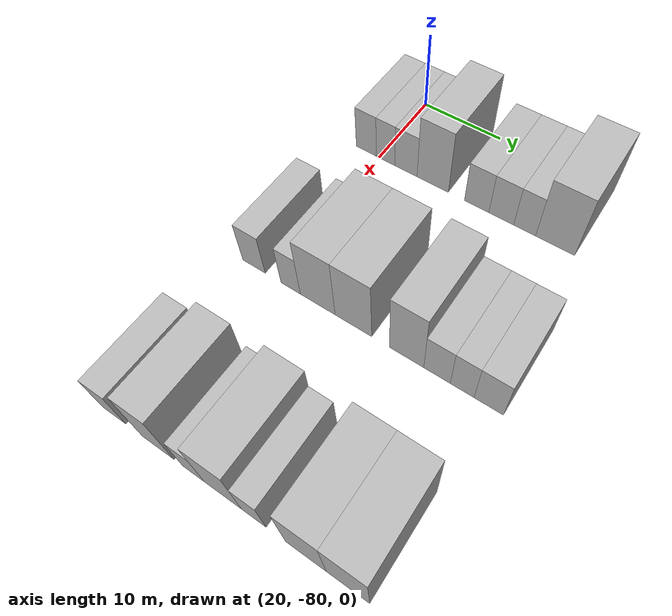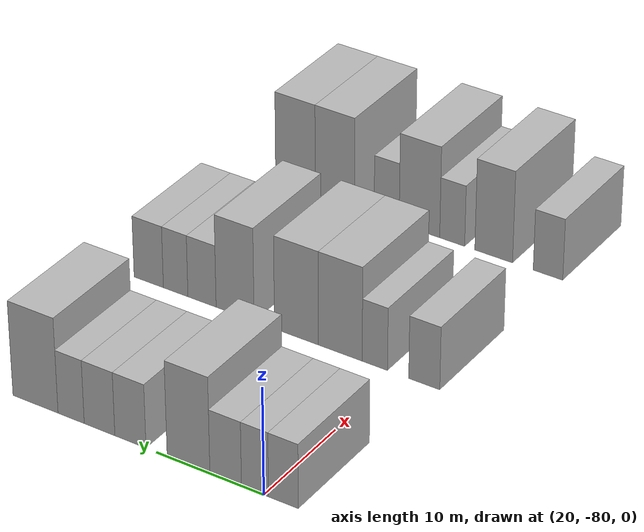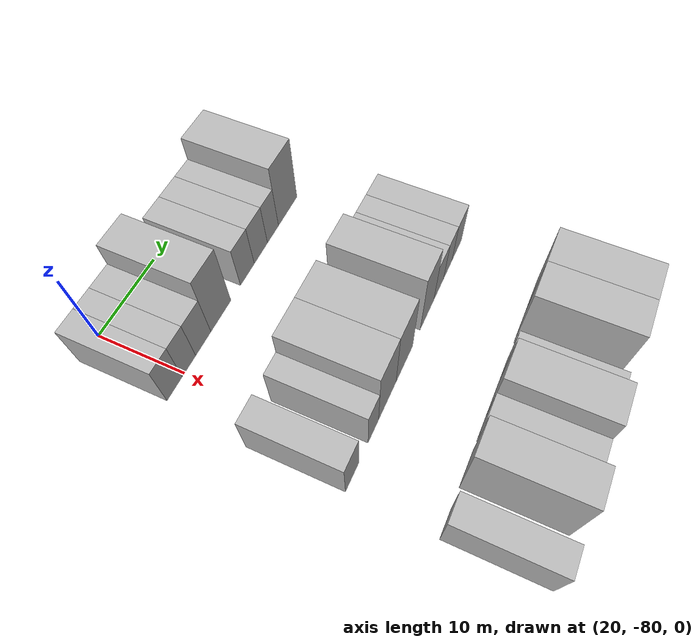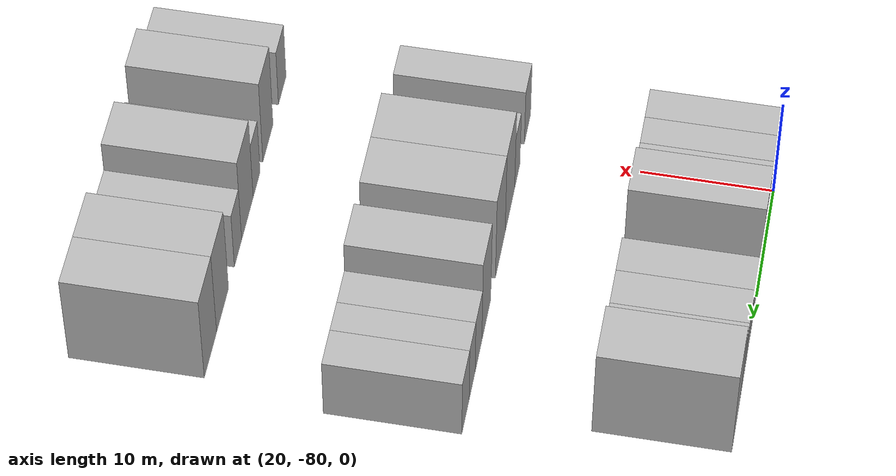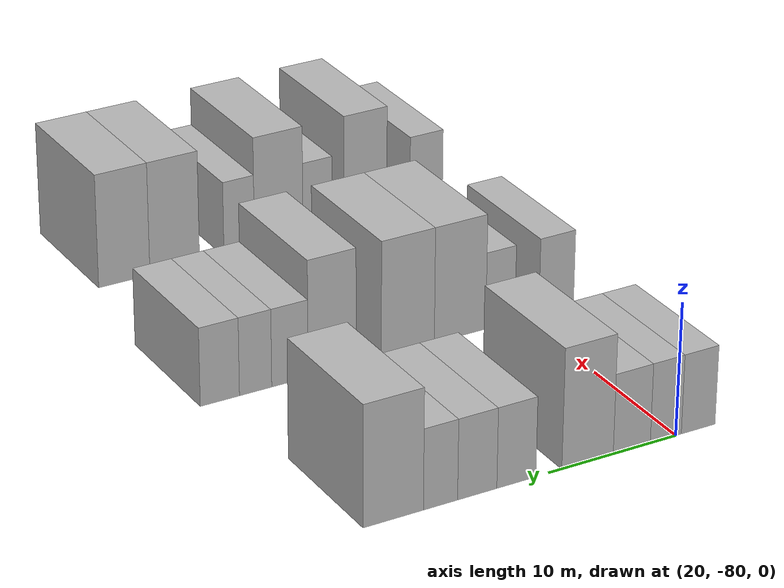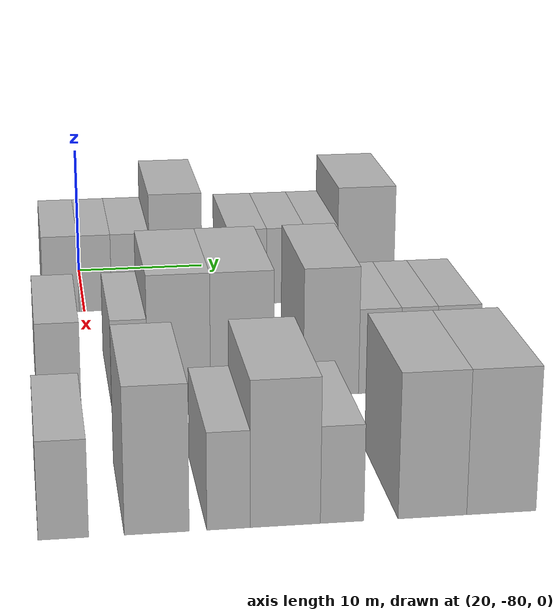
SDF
<sdf version="1.6">
 <world name="default">
  <model name="building_37">
   <static>1</static>
   <pose>25.0000 -81.7671 0 0.000000 0.000000 0.000000</pose>
   <link name="link">
    <pose>0 0 3.00 0 0 0</pose>
    <collision name="collision"><geometry><box><size>10.0000 2.7089 6.0000</size></box></geometry></collision>
    <visual name="visual">
     <cast_shadows>0</cast_shadows>
     <geometry><box><size>10.0000 2.7089 6.0000</size></box></geometry>
     <material>
      <script>
       <uri>model://HANNAS_wall/materials/scripts</uri>
       <uri>model://HANNAS_wall/materials/textures</uri>
       <name>vrc/HANNAS_wall</name>
      </script>
     </material>
    </visual>
   </link>
  </model>
  <model name="building_38">
   <static>1</static>
   <pose>25.0000 -79.1768 0 0.000000 0.000000 0.000000</pose>
   <link name="link">
    <pose>0 0 3.00 0 0 0</pose>
    <collision name="collision"><geometry><box><size>10.0000 2.4715 6.0000</size></box></geometry></collision>
    <visual name="visual">
     <cast_shadows>0</cast_shadows>
     <geometry><box><size>10.0000 2.4715 6.0000</size></box></geometry>
     <material>
      <script>
       <uri>model://HANNAS_wall/materials/scripts</uri>
       <uri>model://HANNAS_wall/materials/textures</uri>
       <name>vrc/HANNAS_wall</name>
      </script>
     </material>
    </visual>
   </link>
  </model>
  <model name="building_39">
   <static>1</static>
   <pose>25.0000 -76.4814 0 0.000000 0.000000 0.000000</pose>
   <link name="link">
    <pose>0 0 3.00 0 0 0</pose>
    <collision name="collision"><geometry><box><size>10.0000 2.9194 6.0000</size></box></geometry></collision>
    <visual name="visual">
     <cast_shadows>0</cast_shadows>
     <geometry><box><size>10.0000 2.9194 6.0000</size></box></geometry>
     <material>
      <script>
       <uri>model://HANNAS_wall/materials/scripts</uri>
       <uri>model://HANNAS_wall/materials/textures</uri>
       <name>vrc/HANNAS_wall</name>
      </script>
     </material>
    </visual>
   </link>
  </model>
  <model name="building_40">
   <static>1</static>
   <pose>25.0000 -73.0210 0 0.000000 0.000000 0.000000</pose>
   <link name="link">
    <pose>0 0 4.50 0 0 0</pose>
    <collision name="collision"><geometry><box><size>10.0000 4.0014 9.0000</size></box></geometry></collision>
    <visual name="visual">
     <cast_shadows>0</cast_shadows>
     <geometry><box><size>10.0000 4.0014 9.0000</size></box></geometry>
     <material>
      <script>
       <uri>model://HANNAS_wall/materials/scripts</uri>
       <uri>model://HANNAS_wall/materials/textures</uri>
       <name>vrc/HANNAS_wall</name>
      </script>
     </material>
    </visual>
   </link>
  </model>
  <model name="building_41">
   <static>1</static>
   <pose>25.0000 -67.5345 0 0.000000 0.000000 0.000000</pose>
   <link name="link">
    <pose>0 0 3.00 0 0 0</pose>
    <collision name="collision"><geometry><box><size>10.0000 2.9716 6.0000</size></box></geometry></collision>
    <visual name="visual">
     <cast_shadows>0</cast_shadows>
     <geometry><box><size>10.0000 2.9716 6.0000</size></box></geometry>
     <material>
      <script>
       <uri>model://HANNAS_wall/materials/scripts</uri>
       <uri>model://HANNAS_wall/materials/textures</uri>
       <name>vrc/HANNAS_wall</name>
      </script>
     </material>
    </visual>
   </link>
  </model>
  <model name="building_42">
   <static>1</static>
   <pose>25.0000 -64.5715 0 0.000000 0.000000 0.000000</pose>
   <link name="link">
    <pose>0 0 3.00 0 0 0</pose>
    <collision name="collision"><geometry><box><size>10.0000 2.9545 6.0000</size></box></geometry></collision>
    <visual name="visual">
     <cast_shadows>0</cast_shadows>
     <geometry><box><size>10.0000 2.9545 6.0000</size></box></geometry>
     <material>
      <script>
       <uri>model://HANNAS_wall/materials/scripts</uri>
       <uri>model://HANNAS_wall/materials/textures</uri>
       <name>vrc/HANNAS_wall</name>
      </script>
     </material>
    </visual>
   </link>
  </model>
  <model name="building_43">
   <static>1</static>
   <pose>25.0000 -61.8195 0 0.000000 0.000000 0.000000</pose>
   <link name="link">
    <pose>0 0 3.00 0 0 0</pose>
    <collision name="collision"><geometry><box><size>10.0000 2.5494 6.0000</size></box></geometry></collision>
    <visual name="visual">
     <cast_shadows>0</cast_shadows>
     <geometry><box><size>10.0000 2.5494 6.0000</size></box></geometry>
     <material>
      <script>
       <uri>model://HANNAS_wall/materials/scripts</uri>
       <uri>model://HANNAS_wall/materials/textures</uri>
       <name>vrc/HANNAS_wall</name>
      </script>
     </material>
    </visual>
   </link>
  </model>
  <model name="building_44">
   <static>1</static>
   <pose>25.0000 -58.3262 0 0.000000 0.000000 0.000000</pose>
   <link name="link">
    <pose>0 0 4.50 0 0 0</pose>
    <collision name="collision"><geometry><box><size>10.0000 4.4372 9.0000</size></box></geometry></collision>
    <visual name="visual">
     <cast_shadows>0</cast_shadows>
     <geometry><box><size>10.0000 4.4372 9.0000</size></box></geometry>
     <material>
      <script>
       <uri>model://HANNAS_wall/materials/scripts</uri>
       <uri>model://HANNAS_wall/materials/textures</uri>
       <name>vrc/HANNAS_wall</name>
      </script>
     </material>
    </visual>
   </link>
  </model>
  <model name="building_164">
   <static>1</static>
   <pose>44.0000 -82.5658 0 0.000000 0.000000 0.000000</pose>
   <link name="link">
    <pose>0 0 3.00 0 0 0</pose>
    <collision name="collision"><geometry><box><size>10.0000 2.8969 6.0000</size></box></geometry></collision>
    <visual name="visual">
     <cast_shadows>0</cast_shadows>
     <geometry><box><size>10.0000 2.8969 6.0000</size></box></geometry>
     <material>
      <script>
       <uri>model://HANNAS_wall/materials/scripts</uri>
       <uri>model://HANNAS_wall/materials/textures</uri>
       <name>vrc/HANNAS_wall</name>
      </script>
     </material>
    </visual>
   </link>
  </model>
  <model name="building_165">
   <static>1</static>
   <pose>44.0000 -77.9173 0 0.000000 0.000000 0.000000</pose>
   <link name="link">
    <pose>0 0 3.00 0 0 0</pose>
    <collision name="collision"><geometry><box><size>10.0000 2.4003 6.0000</size></box></geometry></collision>
    <visual name="visual">
     <cast_shadows>0</cast_shadows>
     <geometry><box><size>10.0000 2.4003 6.0000</size></box></geometry>
     <material>
      <script>
       <uri>model://HANNAS_wall/materials/scripts</uri>
       <uri>model://HANNAS_wall/materials/textures</uri>
       <name>vrc/HANNAS_wall</name>
      </script>
     </material>
    </visual>
   </link>
  </model>
  <model name="building_166">
   <static>1</static>
   <pose>44.0000 -74.6192 0 0.000000 0.000000 0.000000</pose>
   <link name="link">
    <pose>0 0 4.50 0 0 0</pose>
    <collision name="collision"><geometry><box><size>10.0000 4.1958 9.0000</size></box></geometry></collision>
    <visual name="visual">
     <cast_shadows>0</cast_shadows>
     <geometry><box><size>10.0000 4.1958 9.0000</size></box></geometry>
     <material>
      <script>
       <uri>model://HANNAS_wall/materials/scripts</uri>
       <uri>model://HANNAS_wall/materials/textures</uri>
       <name>vrc/HANNAS_wall</name>
      </script>
     </material>
    </visual>
   </link>
  </model>
  <model name="building_167">
   <static>1</static>
   <pose>44.0000 -70.3907 0 0.000000 0.000000 0.000000</pose>
   <link name="link">
    <pose>0 0 4.50 0 0 0</pose>
    <collision name="collision"><geometry><box><size>10.0000 4.2611 9.0000</size></box></geometry></collision>
    <visual name="visual">
     <cast_shadows>0</cast_shadows>
     <geometry><box><size>10.0000 4.2611 9.0000</size></box></geometry>
     <material>
      <script>
       <uri>model://HANNAS_wall/materials/scripts</uri>
       <uri>model://HANNAS_wall/materials/textures</uri>
       <name>vrc/HANNAS_wall</name>
      </script>
     </material>
    </visual>
   </link>
  </model>
  <model name="building_168">
   <static>1</static>
   <pose>44.0000 -64.3765 0 0.000000 0.000000 0.000000</pose>
   <link name="link">
    <pose>0 0 4.50 0 0 0</pose>
    <collision name="collision"><geometry><box><size>10.0000 3.7672 9.0000</size></box></geometry></collision>
    <visual name="visual">
     <cast_shadows>0</cast_shadows>
     <geometry><box><size>10.0000 3.7672 9.0000</size></box></geometry>
     <material>
      <script>
       <uri>model://HANNAS_wall/materials/scripts</uri>
       <uri>model://HANNAS_wall/materials/textures</uri>
       <name>vrc/HANNAS_wall</name>
      </script>
     </material>
    </visual>
   </link>
  </model>
  <model name="building_169">
   <static>1</static>
   <pose>44.0000 -61.0801 0 0.000000 0.000000 0.000000</pose>
   <link name="link">
    <pose>0 0 3.00 0 0 0</pose>
    <collision name="collision"><geometry><box><size>10.0000 2.8258 6.0000</size></box></geometry></collision>
    <visual name="visual">
     <cast_shadows>0</cast_shadows>
     <geometry><box><size>10.0000 2.8258 6.0000</size></box></geometry>
     <material>
      <script>
       <uri>model://HANNAS_wall/materials/scripts</uri>
       <uri>model://HANNAS_wall/materials/textures</uri>
       <name>vrc/HANNAS_wall</name>
      </script>
     </material>
    </visual>
   </link>
  </model>
  <model name="building_170">
   <static>1</static>
   <pose>44.0000 -58.4266 0 0.000000 0.000000 0.000000</pose>
   <link name="link">
    <pose>0 0 3.00 0 0 0</pose>
    <collision name="collision"><geometry><box><size>10.0000 2.4812 6.0000</size></box></geometry></collision>
    <visual name="visual">
     <cast_shadows>0</cast_shadows>
     <geometry><box><size>10.0000 2.4812 6.0000</size></box></geometry>
     <material>
      <script>
       <uri>model://HANNAS_wall/materials/scripts</uri>
       <uri>model://HANNAS_wall/materials/textures</uri>
       <name>vrc/HANNAS_wall</name>
      </script>
     </material>
    </visual>
   </link>
  </model>
  <model name="building_171">
   <static>1</static>
   <pose>44.0000 -55.6945 0 0.000000 0.000000 0.000000</pose>
   <link name="link">
    <pose>0 0 3.00 0 0 0</pose>
    <collision name="collision"><geometry><box><size>10.0000 2.9829 6.0000</size></box></geometry></collision>
    <visual name="visual">
     <cast_shadows>0</cast_shadows>
     <geometry><box><size>10.0000 2.9829 6.0000</size></box></geometry>
     <material>
      <script>
       <uri>model://HANNAS_wall/materials/scripts</uri>
       <uri>model://HANNAS_wall/materials/textures</uri>
       <name>vrc/HANNAS_wall</name>
      </script>
     </material>
    </visual>
   </link>
  </model>
  <model name="building_285">
   <static>1</static>
   <pose>63.0000 -82.9747 0 0.000000 0.000000 0.000000</pose>
   <link name="link">
    <pose>0 0 3.00 0 0 0</pose>
    <collision name="collision"><geometry><box><size>10.0000 2.8349 6.0000</size></box></geometry></collision>
    <visual name="visual">
     <cast_shadows>0</cast_shadows>
     <geometry><box><size>10.0000 2.8349 6.0000</size></box></geometry>
     <material>
      <script>
       <uri>model://HANNAS_wall/materials/scripts</uri>
       <uri>model://HANNAS_wall/materials/textures</uri>
       <name>vrc/HANNAS_wall</name>
      </script>
     </material>
    </visual>
   </link>
  </model>
  <model name="building_286">
   <static>1</static>
   <pose>63.0000 -77.7177 0 0.000000 0.000000 0.000000</pose>
   <link name="link">
    <pose>0 0 4.50 0 0 0</pose>
    <collision name="collision"><geometry><box><size>10.0000 3.6792 9.0000</size></box></geometry></collision>
    <visual name="visual">
     <cast_shadows>0</cast_shadows>
     <geometry><box><size>10.0000 3.6792 9.0000</size></box></geometry>
     <material>
      <script>
       <uri>model://HANNAS_wall/materials/scripts</uri>
       <uri>model://HANNAS_wall/materials/textures</uri>
       <name>vrc/HANNAS_wall</name>
      </script>
     </material>
    </visual>
   </link>
  </model>
  <model name="building_287">
   <static>1</static>
   <pose>63.0000 -73.6431 0 0.000000 0.000000 0.000000</pose>
   <link name="link">
    <pose>0 0 3.00 0 0 0</pose>
    <collision name="collision"><geometry><box><size>10.0000 2.4700 6.0000</size></box></geometry></collision>
    <visual name="visual">
     <cast_shadows>0</cast_shadows>
     <geometry><box><size>10.0000 2.4700 6.0000</size></box></geometry>
     <material>
      <script>
       <uri>model://HANNAS_wall/materials/scripts</uri>
       <uri>model://HANNAS_wall/materials/textures</uri>
       <name>vrc/HANNAS_wall</name>
      </script>
     </material>
    </visual>
   </link>
  </model>
  <model name="building_288">
   <static>1</static>
   <pose>63.0000 -70.3818 0 0.000000 0.000000 0.000000</pose>
   <link name="link">
    <pose>0 0 4.50 0 0 0</pose>
    <collision name="collision"><geometry><box><size>10.0000 4.0526 9.0000</size></box></geometry></collision>
    <visual name="visual">
     <cast_shadows>0</cast_shadows>
     <geometry><box><size>10.0000 4.0526 9.0000</size></box></geometry>
     <material>
      <script>
       <uri>model://HANNAS_wall/materials/scripts</uri>
       <uri>model://HANNAS_wall/materials/textures</uri>
       <name>vrc/HANNAS_wall</name>
      </script>
     </material>
    </visual>
   </link>
  </model>
  <model name="building_289">
   <static>1</static>
   <pose>63.0000 -67.0928 0 0.000000 0.000000 0.000000</pose>
   <link name="link">
    <pose>0 0 3.00 0 0 0</pose>
    <collision name="collision"><geometry><box><size>10.0000 2.5256 6.0000</size></box></geometry></collision>
    <visual name="visual">
     <cast_shadows>0</cast_shadows>
     <geometry><box><size>10.0000 2.5256 6.0000</size></box></geometry>
     <material>
      <script>
       <uri>model://HANNAS_wall/materials/scripts</uri>
       <uri>model://HANNAS_wall/materials/textures</uri>
       <name>vrc/HANNAS_wall</name>
      </script>
     </material>
    </visual>
   </link>
  </model>
  <model name="building_290">
   <static>1</static>
   <pose>63.0000 -61.8114 0 0.000000 0.000000 0.000000</pose>
   <link name="link">
    <pose>0 0 4.50 0 0 0</pose>
    <collision name="collision"><geometry><box><size>10.0000 4.0371 9.0000</size></box></geometry></collision>
    <visual name="visual">
     <cast_shadows>0</cast_shadows>
     <geometry><box><size>10.0000 4.0371 9.0000</size></box></geometry>
     <material>
      <script>
       <uri>model://HANNAS_wall/materials/scripts</uri>
       <uri>model://HANNAS_wall/materials/textures</uri>
       <name>vrc/HANNAS_wall</name>
      </script>
     </material>
    </visual>
   </link>
  </model>
  <model name="building_291">
   <static>1</static>
   <pose>63.0000 -57.7391 0 0.000000 0.000000 0.000000</pose>
   <link name="link">
    <pose>0 0 4.50 0 0 0</pose>
    <collision name="collision"><geometry><box><size>10.0000 4.1076 9.0000</size></box></geometry></collision>
    <visual name="visual">
     <cast_shadows>0</cast_shadows>
     <geometry><box><size>10.0000 4.1076 9.0000</size></box></geometry>
     <material>
      <script>
       <uri>model://HANNAS_wall/materials/scripts</uri>
       <uri>model://HANNAS_wall/materials/textures</uri>
       <name>vrc/HANNAS_wall</name>
      </script>
     </material>
    </visual>
   </link>
  </model>
 </world>
</sdf>
